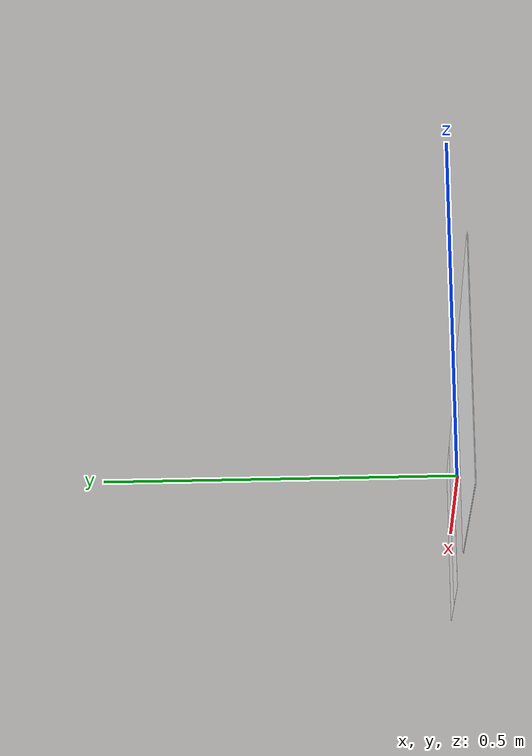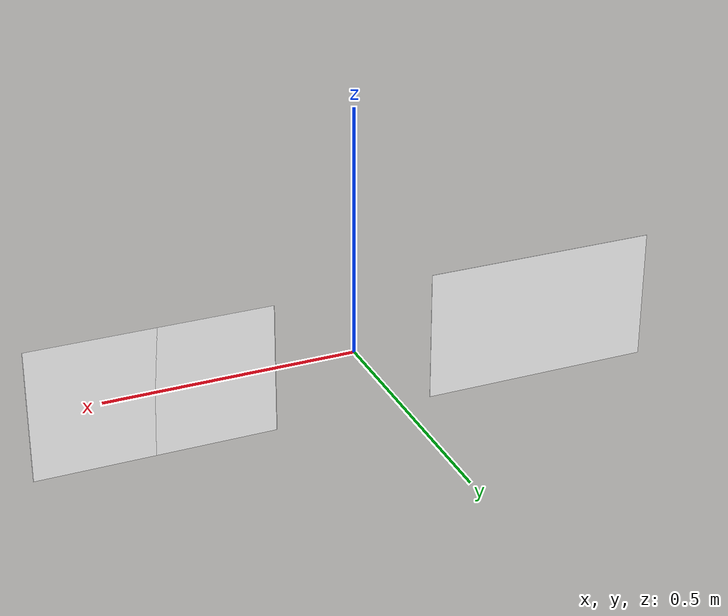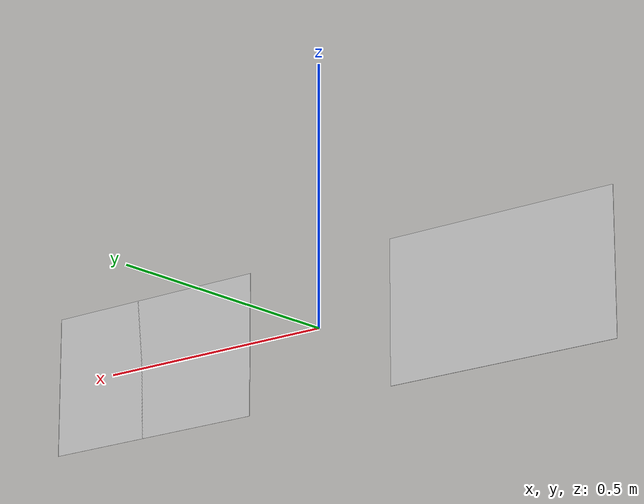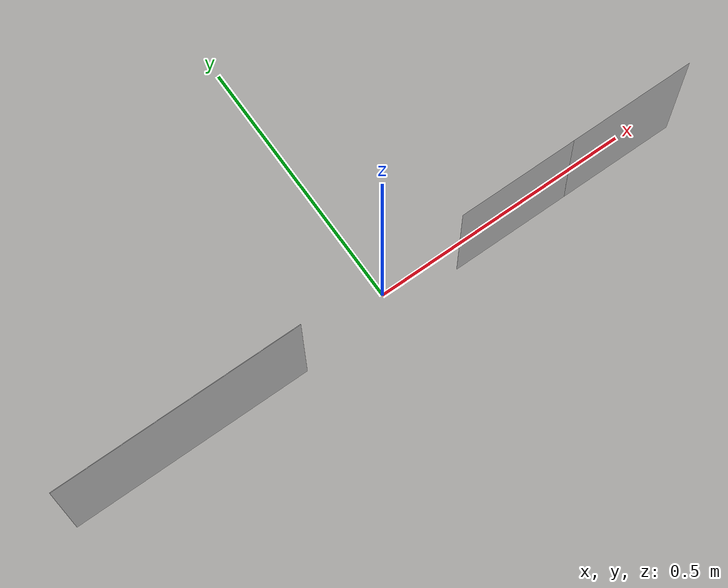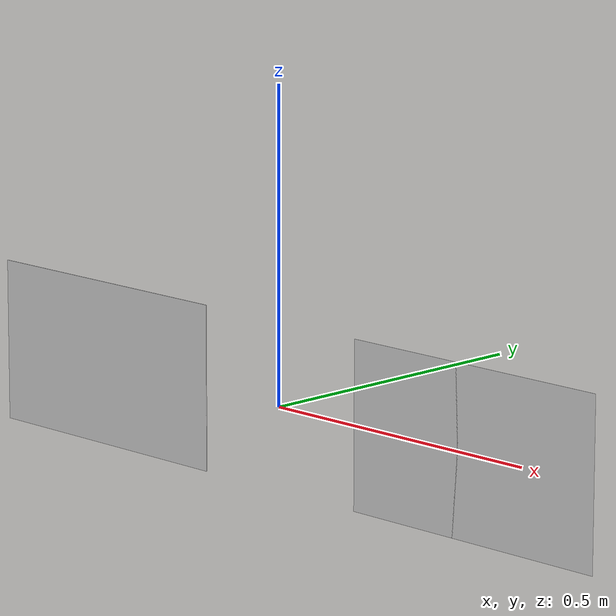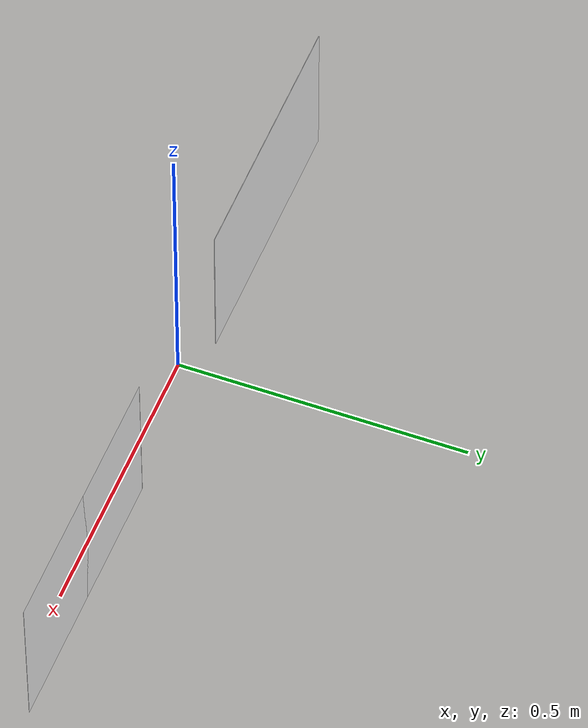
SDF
<?xml version="1.0"?>
<sdf version="1.6">
<model name="videopanel0">
  <static>true</static>
    <link name="lcd1">
	  <pose>-0.4 0 0 1.5708 0 3.1415</pose>
      <collision name="collision">
        <geometry>
			<box>
			  <size>0.2673 0.4758 0.01</size>
			</box>
        </geometry>
        <surface>
          <friction>
            <ode>
              <mu>100</mu>
              <mu2>50</mu2>
            </ode>
          </friction>
        </surface>
      </collision>
		<visual name="screen1f">
		  <pose>0 0 0.0005 0 0 0</pose>
		  <geometry>
			<plane>
			  <normal>0 0 1</normal>
			  <size>0.4758 0.2673</size>
			</plane>
		  </geometry>

		  <material>
			<diffuse>1 1 1 1</diffuse>
			<pbr>
			  <metal>
				<albedo_map>materials/textures/parking.png</albedo_map>
			  </metal>
			</pbr>
		  </material>
		</visual>
		<visual name="screen1b">
		  <pose>0 0 -0.0005 3.1415 0 3.1415</pose>
		  <geometry>
			<plane>
			  <normal>0 0 1</normal>
			  <size>0.4758 0.2673</size>
			</plane>
		  </geometry>

		  <material>
			<diffuse>1 1 1 1</diffuse>
			<pbr>
			  <metal>
				<albedo_map>materials/textures/parking.png</albedo_map>
			  </metal>
			</pbr>
		  </material>
		</visual>
    </link>
    <link name="lcd2">
	  <pose>0.4 0 0 1.5708 0 1.5708</pose>
      <collision name="collision">
        <geometry>
			<box>
			  <size>0.2673 0.4758 0.01</size>
			</box>
        </geometry>
        <surface>
          <friction>
            <ode>
              <mu>100</mu>
              <mu2>50</mu2>
            </ode>
          </friction>
        </surface>
      </collision>
		<visual name="screen2f">
		  <pose>0 0 0.0005 0 -1.5708 0</pose>
		  <geometry>
			<plane>
			  <normal>0 0 1</normal>
			  <size>0.4758 0.2673</size>
			</plane>
		  </geometry>

		  <material>
			<diffuse>1 1 1 1</diffuse>
			<pbr>
			  <metal>
				<albedo_map>materials/textures/parking.png</albedo_map>
			  </metal>
			</pbr>
		  </material>
		</visual>
		<visual name="screen2b">
		  <pose>0 0 -0.0005 0 1.5708 0</pose>
		  <geometry>
			<plane>
			  <normal>0 0 1</normal>
			  <size>0.4758 0.2673</size>
			</plane>
		  </geometry>

		  <material>
			<diffuse>1 1 1 1</diffuse>
			<pbr>
			  <metal>
				<albedo_map>materials/textures/parking.png</albedo_map>
			  </metal>
			</pbr>
		  </material>
		</visual>
    </link>

  </model>
</sdf>
